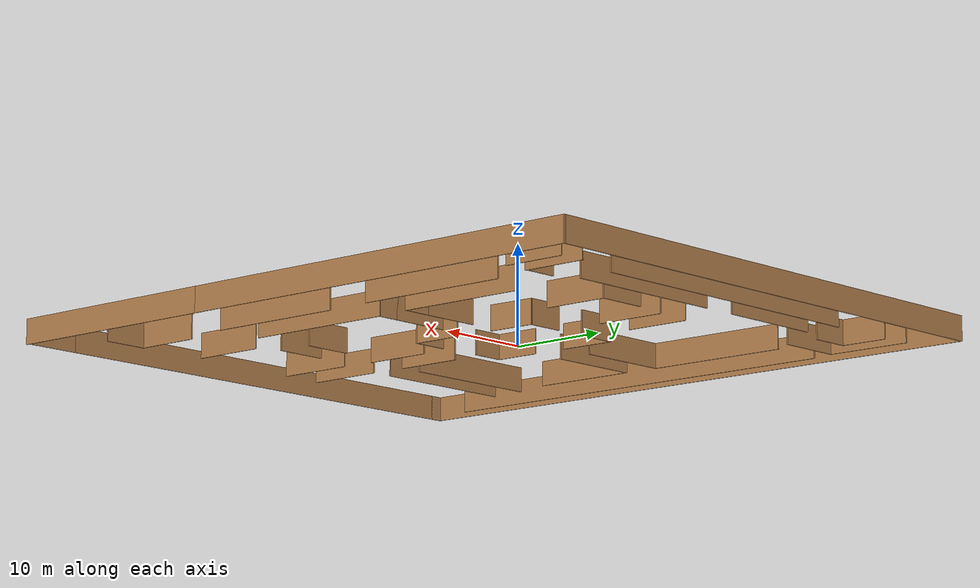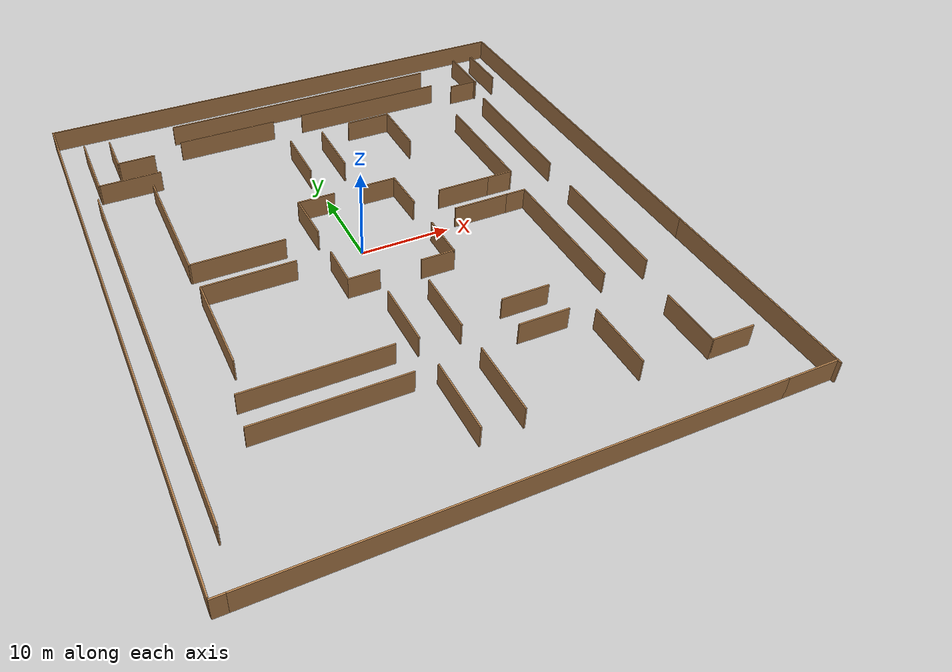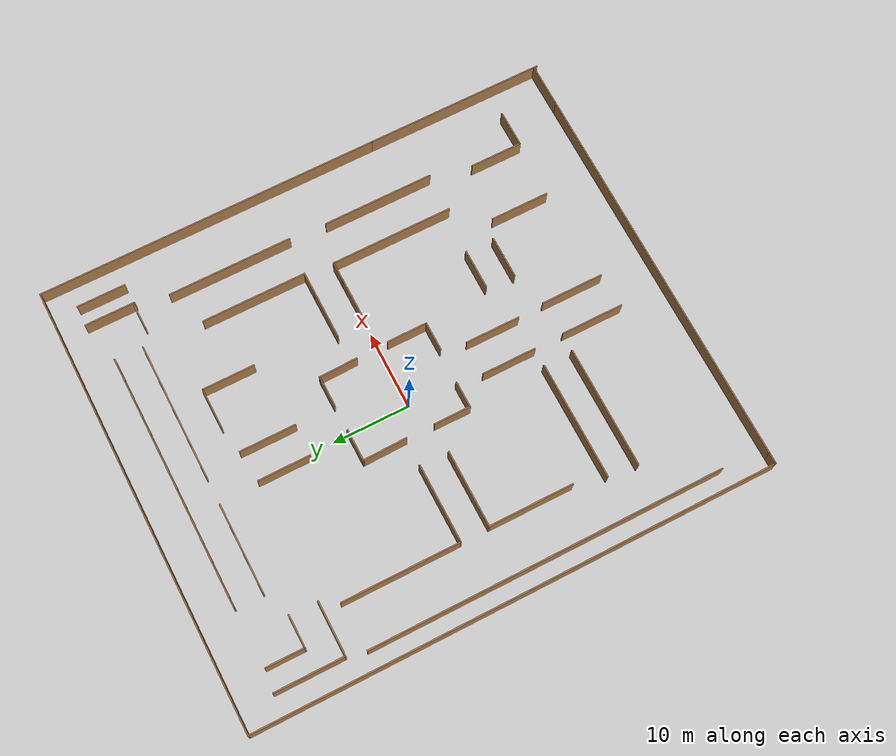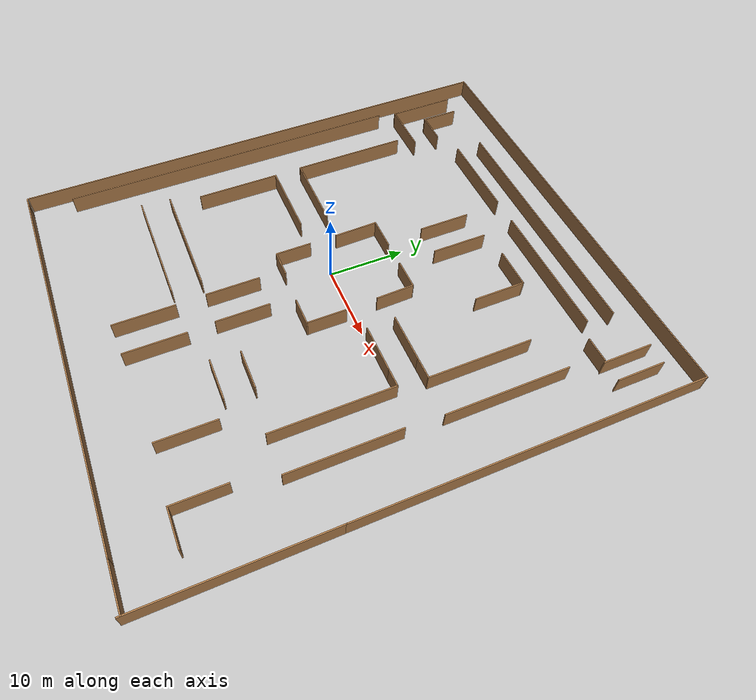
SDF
<?xml version='1.0'?>
<sdf version='1.7'>
  <model name='model6'>
    <pose>2.88212 -0.63871 0 0 -0 0</pose>
    <link name='Wall_10'>
      <collision name='Wall_10_Collision'>
        <geometry>
          <box>
            <size>51 0.15 2.5</size>
          </box>
        </geometry>
        <pose>0 0 1.25 0 -0 0</pose>
      </collision>
      <visual name='Wall_10_Visual'>
        <pose>0 0 1.25 0 -0 0</pose>
        <geometry>
          <box>
            <size>51 0.15 2.5</size>
          </box>
        </geometry>
        <material>
          <script>
            <uri>file://media/materials/scripts/gazebo.material</uri>
            <name>Gazebo/Wood</name>
          </script>
          <ambient>1 1 1 1</ambient>
        </material>
        <meta>
          <layer>0</layer>
        </meta>
      </visual>
      <pose>-2.12345 -33.3474 0 0 -0 0</pose>
    </link>
    <link name='Wall_101'>
      <collision name='Wall_101_Collision'>
        <geometry>
          <box>
            <size>4.25 0.15 2.5</size>
          </box>
        </geometry>
        <pose>0 0 1.25 0 -0 0</pose>
      </collision>
      <visual name='Wall_101_Visual'>
        <pose>0 0 1.25 0 -0 0</pose>
        <geometry>
          <box>
            <size>4.25 0.15 2.5</size>
          </box>
        </geometry>
        <material>
          <script>
            <uri>file://media/materials/scripts/gazebo.material</uri>
            <name>Gazebo/Wood</name>
          </script>
          <ambient>1 1 1 1</ambient>
        </material>
        <meta>
          <layer>0</layer>
        </meta>
      </visual>
      <pose>-21.1418 24.0684 0 0 -0 3.14159</pose>
    </link>
    <link name='Wall_102'>
      <collision name='Wall_102_Collision'>
        <geometry>
          <box>
            <size>5 0.15 2.5</size>
          </box>
        </geometry>
        <pose>0 0 1.25 0 -0 0</pose>
      </collision>
      <visual name='Wall_102_Visual'>
        <pose>0 0 1.25 0 -0 0</pose>
        <geometry>
          <box>
            <size>5 0.15 2.5</size>
          </box>
        </geometry>
        <material>
          <script>
            <uri>file://media/materials/scripts/gazebo.material</uri>
            <name>Gazebo/Wood</name>
          </script>
          <ambient>1 1 1 1</ambient>
        </material>
        <meta>
          <layer>0</layer>
        </meta>
      </visual>
      <pose>-23.1918 26.4934 0 0 -0 1.5708</pose>
    </link>
    <link name='Wall_104'>
      <collision name='Wall_104_Collision'>
        <geometry>
          <box>
            <size>6.5 0.15 2.5</size>
          </box>
        </geometry>
        <pose>0 0 1.25 0 -0 0</pose>
      </collision>
      <visual name='Wall_104_Visual'>
        <pose>0 0 1.25 0 -0 0</pose>
        <geometry>
          <box>
            <size>6.5 0.15 2.5</size>
          </box>
        </geometry>
        <material>
          <script>
            <uri>file://media/materials/scripts/gazebo.material</uri>
            <name>Gazebo/Wood</name>
          </script>
          <ambient>1 1 1 1</ambient>
        </material>
        <meta>
          <layer>0</layer>
        </meta>
      </visual>
      <pose>22.861 27.3286 0 0 -0 -1.5708</pose>
    </link>
    <link name='Wall_106'>
      <collision name='Wall_106_Collision'>
        <geometry>
          <box>
            <size>6.25 0.15 2.5</size>
          </box>
        </geometry>
        <pose>0 0 1.25 0 -0 0</pose>
      </collision>
      <visual name='Wall_106_Visual'>
        <pose>0 0 1.25 0 -0 0</pose>
        <geometry>
          <box>
            <size>6.25 0.15 2.5</size>
          </box>
        </geometry>
        <material>
          <script>
            <uri>file://media/materials/scripts/gazebo.material</uri>
            <name>Gazebo/Wood</name>
          </script>
          <ambient>1 1 1 1</ambient>
        </material>
        <meta>
          <layer>0</layer>
        </meta>
      </visual>
      <pose>25.4599 27.3298 0 0 -0 -1.5708</pose>
    </link>
    <link name='Wall_108'>
      <collision name='Wall_108_Collision'>
        <geometry>
          <box>
            <size>3.25 0.15 2.5</size>
          </box>
        </geometry>
        <pose>0 0 1.25 0 -0 0</pose>
      </collision>
      <visual name='Wall_108_Visual'>
        <pose>0 0 1.25 0 -0 0</pose>
        <geometry>
          <box>
            <size>3.25 0.15 2.5</size>
          </box>
        </geometry>
        <material>
          <script>
            <uri>file://media/materials/scripts/gazebo.material</uri>
            <name>Gazebo/Wood</name>
          </script>
          <ambient>1 1 1 1</ambient>
        </material>
        <meta>
          <layer>0</layer>
        </meta>
      </visual>
      <pose>21.0635 24.3159 0 0 -0 3.14159</pose>
    </link>
    <link name='Wall_110'>
      <collision name='Wall_110_Collision'>
        <geometry>
          <box>
            <size>5.5 0.15 2.5</size>
          </box>
        </geometry>
        <pose>0 0 1.25 0 -0 0</pose>
      </collision>
      <visual name='Wall_110_Visual'>
        <pose>0 0 1.25 0 -0 0</pose>
        <geometry>
          <box>
            <size>5.5 0.15 2.5</size>
          </box>
        </geometry>
        <material>
          <script>
            <uri>file://media/materials/scripts/gazebo.material</uri>
            <name>Gazebo/Wood</name>
          </script>
          <ambient>1 1 1 1</ambient>
        </material>
        <meta>
          <layer>0</layer>
        </meta>
      </visual>
      <pose>7.96288 -17.7607 0 0 -0 0</pose>
    </link>
    <link name='Wall_112'>
      <collision name='Wall_112_Collision'>
        <geometry>
          <box>
            <size>5.25 0.15 2.5</size>
          </box>
        </geometry>
        <pose>0 0 1.25 0 -0 0</pose>
      </collision>
      <visual name='Wall_112_Visual'>
        <pose>0 0 1.25 0 -0 0</pose>
        <geometry>
          <box>
            <size>5.25 0.15 2.5</size>
          </box>
        </geometry>
        <material>
          <script>
            <uri>file://media/materials/scripts/gazebo.material</uri>
            <name>Gazebo/Wood</name>
          </script>
          <ambient>1 1 1 1</ambient>
        </material>
        <meta>
          <layer>0</layer>
        </meta>
      </visual>
      <pose>8.08539 -14.048 0 0 -0 0</pose>
    </link>
    <link name='Wall_12'>
      <collision name='Wall_12_Collision'>
        <geometry>
          <box>
            <size>23.25 0.15 2.5</size>
          </box>
        </geometry>
        <pose>0 0 1.25 0 -0 0</pose>
      </collision>
      <visual name='Wall_12_Visual'>
        <pose>0 0 1.25 0 -0 0</pose>
        <geometry>
          <box>
            <size>23.25 0.15 2.5</size>
          </box>
        </geometry>
        <material>
          <script>
            <uri>file://media/materials/scripts/gazebo.material</uri>
            <name>Gazebo/Wood</name>
          </script>
          <ambient>1 1 1 1</ambient>
        </material>
        <meta>
          <layer>0</layer>
        </meta>
      </visual>
      <pose>28.925 -22.175 0 0 -0 1.5708</pose>
    </link>
    <link name='Wall_14'>
      <collision name='Wall_14_Collision'>
        <geometry>
          <box>
            <size>5.75 0.15 2.5</size>
          </box>
        </geometry>
        <pose>0 0 1.25 0 -0 0</pose>
      </collision>
      <visual name='Wall_14_Visual'>
        <pose>0 0 1.25 0 -0 0</pose>
        <geometry>
          <box>
            <size>5.75 0.15 2.5</size>
          </box>
        </geometry>
        <material>
          <script>
            <uri>file://media/materials/scripts/gazebo.material</uri>
            <name>Gazebo/Wood</name>
          </script>
          <ambient>1 1 1 1</ambient>
        </material>
        <meta>
          <layer>0</layer>
        </meta>
      </visual>
      <pose>26.1016 -33.3474 0 0 -0 0</pose>
    </link>
    <link name='Wall_16'>
      <collision name='Wall_16_Collision'>
        <geometry>
          <box>
            <size>44.5 0.15 2.5</size>
          </box>
        </geometry>
        <pose>0 0 1.25 0 -0 0</pose>
      </collision>
      <visual name='Wall_16_Visual'>
        <pose>0 0 1.25 0 -0 0</pose>
        <geometry>
          <box>
            <size>44.5 0.15 2.5</size>
          </box>
        </geometry>
        <material>
          <script>
            <uri>file://media/materials/scripts/gazebo.material</uri>
            <name>Gazebo/Wood</name>
          </script>
          <ambient>1 1 1 1</ambient>
        </material>
        <meta>
          <layer>0</layer>
        </meta>
      </visual>
      <pose>28.925 11.55 0 0 -0 1.5708</pose>
    </link>
    <link name='Wall_17'>
      <collision name='Wall_17_Collision'>
        <geometry>
          <box>
            <size>58 0.15 2.5</size>
          </box>
        </geometry>
        <pose>0 0 1.25 0 -0 0</pose>
      </collision>
      <visual name='Wall_17_Visual'>
        <pose>0 0 1.25 0 -0 0</pose>
        <geometry>
          <box>
            <size>58 0.15 2.5</size>
          </box>
        </geometry>
        <material>
          <script>
            <uri>file://media/materials/scripts/gazebo.material</uri>
            <name>Gazebo/Wood</name>
          </script>
          <ambient>1 1 1 1</ambient>
        </material>
        <meta>
          <layer>0</layer>
        </meta>
      </visual>
      <pose>0 33.725 0 0 -0 3.14159</pose>
    </link>
    <link name='Wall_18'>
      <collision name='Wall_18_Collision'>
        <geometry>
          <box>
            <size>67 0.15 2.5</size>
          </box>
        </geometry>
        <pose>0 0 1.25 0 -0 0</pose>
      </collision>
      <visual name='Wall_18_Visual'>
        <pose>0 0 1.25 0 -0 0</pose>
        <geometry>
          <box>
            <size>67 0.15 2.5</size>
          </box>
        </geometry>
        <material>
          <script>
            <uri>file://media/materials/scripts/gazebo.material</uri>
            <name>Gazebo/Wood</name>
          </script>
          <ambient>1 1 1 1</ambient>
        </material>
        <meta>
          <layer>0</layer>
        </meta>
      </visual>
      <pose>-28.925 0.299998 0 0 -0 -1.5708</pose>
    </link>
    <link name='Wall_20'>
      <collision name='Wall_20_Collision'>
        <geometry>
          <box>
            <size>1.5 0.15 2.5</size>
          </box>
        </geometry>
        <pose>0 0 1.25 0 -0 0</pose>
      </collision>
      <visual name='Wall_20_Visual'>
        <pose>0 0 1.25 0 -0 0</pose>
        <geometry>
          <box>
            <size>1.5 0.15 2.5</size>
          </box>
        </geometry>
        <material>
          <script>
            <uri>file://media/materials/scripts/gazebo.material</uri>
            <name>Gazebo/Wood</name>
          </script>
          <ambient>1 1 1 1</ambient>
        </material>
        <meta>
          <layer>0</layer>
        </meta>
      </visual>
      <pose>-28.2234 -33.3474 0 0 -0 3.14159</pose>
    </link>
    <link name='Wall_22'>
      <collision name='Wall_22_Collision'>
        <geometry>
          <box>
            <size>5.78125 0.15 2.5</size>
          </box>
        </geometry>
        <pose>0 0 1.25 0 -0 0</pose>
      </collision>
      <visual name='Wall_22_Visual'>
        <pose>0 0 1.25 0 -0 0</pose>
        <geometry>
          <box>
            <size>5.78125 0.15 2.5</size>
          </box>
        </geometry>
        <material>
          <script>
            <uri>file://media/materials/scripts/gazebo.material</uri>
            <name>Gazebo/Wood</name>
          </script>
          <ambient>1 1 1 1</ambient>
        </material>
        <meta>
          <layer>0</layer>
        </meta>
      </visual>
      <pose>-6.90194 5.84504 0 0 -0 1.59277</pose>
    </link>
    <link name='Wall_24'>
      <collision name='Wall_24_Collision'>
        <geometry>
          <box>
            <size>5.03146 0.15 2.5</size>
          </box>
        </geometry>
        <pose>0 0 1.25 0 -0 0</pose>
      </collision>
      <visual name='Wall_24_Visual'>
        <pose>0 0 1.25 0 -0 0</pose>
        <geometry>
          <box>
            <size>5.03146 0.15 2.5</size>
          </box>
        </geometry>
        <material>
          <script>
            <uri>file://media/materials/scripts/gazebo.material</uri>
            <name>Gazebo/Wood</name>
          </script>
          <ambient>1 1 1 1</ambient>
        </material>
        <meta>
          <layer>0</layer>
        </meta>
      </visual>
      <pose>4.44806 6.22004 0 0 -0 -1.54544</pose>
    </link>
    <link name='Wall_26'>
      <collision name='Wall_26_Collision'>
        <geometry>
          <box>
            <size>4.75 0.15 2.5</size>
          </box>
        </geometry>
        <pose>0 0 1.25 0 -0 0</pose>
      </collision>
      <visual name='Wall_26_Visual'>
        <pose>0 0 1.25 0 -0 0</pose>
        <geometry>
          <box>
            <size>4.75 0.15 2.5</size>
          </box>
        </geometry>
        <material>
          <script>
            <uri>file://media/materials/scripts/gazebo.material</uri>
            <name>Gazebo/Wood</name>
          </script>
          <ambient>1 1 1 1</ambient>
        </material>
        <meta>
          <layer>0</layer>
        </meta>
      </visual>
      <pose>-6.84006 -2.98254 0 0 -0 -1.5708</pose>
    </link>
    <link name='Wall_27'>
      <collision name='Wall_27_Collision'>
        <geometry>
          <box>
            <size>3.5 0.15 2.5</size>
          </box>
        </geometry>
        <pose>0 0 1.25 0 -0 0</pose>
      </collision>
      <visual name='Wall_27_Visual'>
        <pose>0 0 1.25 0 -0 0</pose>
        <geometry>
          <box>
            <size>3.5 0.15 2.5</size>
          </box>
        </geometry>
        <material>
          <script>
            <uri>file://media/materials/scripts/gazebo.material</uri>
            <name>Gazebo/Wood</name>
          </script>
          <ambient>1 1 1 1</ambient>
        </material>
        <meta>
          <layer>0</layer>
        </meta>
      </visual>
      <pose>-5.16506 -5.28254 0 0 -0 0</pose>
    </link>
    <link name='Wall_29'>
      <collision name='Wall_29_Collision'>
        <geometry>
          <box>
            <size>5.25 0.15 2.5</size>
          </box>
        </geometry>
        <pose>0 0 1.25 0 -0 0</pose>
      </collision>
      <visual name='Wall_29_Visual'>
        <pose>0 0 1.25 0 -0 0</pose>
        <geometry>
          <box>
            <size>5.25 0.15 2.5</size>
          </box>
        </geometry>
        <material>
          <script>
            <uri>file://media/materials/scripts/gazebo.material</uri>
            <name>Gazebo/Wood</name>
          </script>
          <ambient>1 1 1 1</ambient>
        </material>
        <meta>
          <layer>0</layer>
        </meta>
      </visual>
      <pose>4.66911 -2.98503 0 0 -0 -1.5708</pose>
    </link>
    <link name='Wall_30'>
      <collision name='Wall_30_Collision'>
        <geometry>
          <box>
            <size>3.75 0.15 2.5</size>
          </box>
        </geometry>
        <pose>0 0 1.25 0 -0 0</pose>
      </collision>
      <visual name='Wall_30_Visual'>
        <pose>0 0 1.25 0 -0 0</pose>
        <geometry>
          <box>
            <size>3.75 0.15 2.5</size>
          </box>
        </geometry>
        <material>
          <script>
            <uri>file://media/materials/scripts/gazebo.material</uri>
            <name>Gazebo/Wood</name>
          </script>
          <ambient>1 1 1 1</ambient>
        </material>
        <meta>
          <layer>0</layer>
        </meta>
      </visual>
      <pose>2.86911 -5.53503 0 0 -0 3.14159</pose>
    </link>
    <link name='Wall_32'>
      <collision name='Wall_32_Collision'>
        <geometry>
          <box>
            <size>4.25 0.15 2.5</size>
          </box>
        </geometry>
        <pose>0 0 1.25 0 -0 0</pose>
      </collision>
      <visual name='Wall_32_Visual'>
        <pose>0 0 1.25 0 -0 0</pose>
        <geometry>
          <box>
            <size>4.25 0.15 2.5</size>
          </box>
        </geometry>
        <material>
          <script>
            <uri>file://media/materials/scripts/gazebo.material</uri>
            <name>Gazebo/Wood</name>
          </script>
          <ambient>1 1 1 1</ambient>
        </material>
        <meta>
          <layer>0</layer>
        </meta>
      </visual>
      <pose>-4.91381 8.65999 0 0 -0 0</pose>
    </link>
    <link name='Wall_34'>
      <collision name='Wall_34_Collision'>
        <geometry>
          <box>
            <size>4 0.15 2.5</size>
          </box>
        </geometry>
        <pose>0 0 1.25 0 -0 0</pose>
      </collision>
      <visual name='Wall_34_Visual'>
        <pose>0 0 1.25 0 -0 0</pose>
        <geometry>
          <box>
            <size>4 0.15 2.5</size>
          </box>
        </geometry>
        <material>
          <script>
            <uri>file://media/materials/scripts/gazebo.material</uri>
            <name>Gazebo/Wood</name>
          </script>
          <ambient>1 1 1 1</ambient>
        </material>
        <meta>
          <layer>0</layer>
        </meta>
      </visual>
      <pose>2.46118 8.65999 0 0 -0 3.14159</pose>
    </link>
    <link name='Wall_36'>
      <collision name='Wall_36_Collision'>
        <geometry>
          <box>
            <size>10.25 0.15 2.5</size>
          </box>
        </geometry>
        <pose>0 0 1.25 0 -0 0</pose>
      </collision>
      <visual name='Wall_36_Visual'>
        <pose>0 0 1.25 0 -0 0</pose>
        <geometry>
          <box>
            <size>10.25 0.15 2.5</size>
          </box>
        </geometry>
        <material>
          <script>
            <uri>file://media/materials/scripts/gazebo.material</uri>
            <name>Gazebo/Wood</name>
          </script>
          <ambient>1 1 1 1</ambient>
        </material>
        <meta>
          <layer>0</layer>
        </meta>
      </visual>
      <pose>-15.4789 3.15385 0 0 -0 3.14159</pose>
    </link>
    <link name='Wall_37'>
      <collision name='Wall_37_Collision'>
        <geometry>
          <box>
            <size>15.25 0.15 2.5</size>
          </box>
        </geometry>
        <pose>0 0 1.25 0 -0 0</pose>
      </collision>
      <visual name='Wall_37_Visual'>
        <pose>0 0 1.25 0 -0 0</pose>
        <geometry>
          <box>
            <size>15.25 0.15 2.5</size>
          </box>
        </geometry>
        <material>
          <script>
            <uri>file://media/materials/scripts/gazebo.material</uri>
            <name>Gazebo/Wood</name>
          </script>
          <ambient>1 1 1 1</ambient>
        </material>
        <meta>
          <layer>0</layer>
        </meta>
      </visual>
      <pose>-20.5289 10.7038 0 0 -0 1.5708</pose>
    </link>
    <link name='Wall_42'>
      <collision name='Wall_42_Collision'>
        <geometry>
          <box>
            <size>33 0.15 2.5</size>
          </box>
        </geometry>
        <pose>0 0 1.25 0 -0 0</pose>
      </collision>
      <visual name='Wall_42_Visual'>
        <pose>0 0 1.25 0 -0 0</pose>
        <geometry>
          <box>
            <size>33 0.15 2.5</size>
          </box>
        </geometry>
        <material>
          <script>
            <uri>file://media/materials/scripts/gazebo.material</uri>
            <name>Gazebo/Wood</name>
          </script>
          <ambient>1 1 1 1</ambient>
        </material>
        <meta>
          <layer>0</layer>
        </meta>
      </visual>
      <pose>0.922122 29.1423 0 0 -0 0</pose>
    </link>
    <link name='Wall_48'>
      <collision name='Wall_48_Collision'>
        <geometry>
          <box>
            <size>16 0.15 2.5</size>
          </box>
        </geometry>
        <pose>0 0 1.25 0 -0 0</pose>
      </collision>
      <visual name='Wall_48_Visual'>
        <pose>0 0 1.25 0 -0 0</pose>
        <geometry>
          <box>
            <size>16 0.15 2.5</size>
          </box>
        </geometry>
        <material>
          <script>
            <uri>file://media/materials/scripts/gazebo.material</uri>
            <name>Gazebo/Wood</name>
          </script>
          <ambient>1 1 1 1</ambient>
        </material>
        <meta>
          <layer>0</layer>
        </meta>
      </visual>
      <pose>21.871 12.0595 0 0 -0 -1.5708</pose>
    </link>
    <link name='Wall_50'>
      <collision name='Wall_50_Collision'>
        <geometry>
          <box>
            <size>14.25 0.15 2.5</size>
          </box>
        </geometry>
        <pose>0 0 1.25 0 -0 0</pose>
      </collision>
      <visual name='Wall_50_Visual'>
        <pose>0 0 1.25 0 -0 0</pose>
        <geometry>
          <box>
            <size>14.25 0.15 2.5</size>
          </box>
        </geometry>
        <material>
          <script>
            <uri>file://media/materials/scripts/gazebo.material</uri>
            <name>Gazebo/Wood</name>
          </script>
          <ambient>1 1 1 1</ambient>
        </material>
        <meta>
          <layer>0</layer>
        </meta>
      </visual>
      <pose>21.6235 -7.73254 0 0 -0 -1.5708</pose>
    </link>
    <link name='Wall_52'>
      <collision name='Wall_52_Collision'>
        <geometry>
          <box>
            <size>6.25 0.15 2.5</size>
          </box>
        </geometry>
        <pose>0 0 1.25 0 -0 0</pose>
      </collision>
      <visual name='Wall_52_Visual'>
        <pose>0 0 1.25 0 -0 0</pose>
        <geometry>
          <box>
            <size>6.25 0.15 2.5</size>
          </box>
        </geometry>
        <material>
          <script>
            <uri>file://media/materials/scripts/gazebo.material</uri>
            <name>Gazebo/Wood</name>
          </script>
          <ambient>1 1 1 1</ambient>
        </material>
        <meta>
          <layer>0</layer>
        </meta>
      </visual>
      <pose>11.0605 4.51515 0 0 -0 0</pose>
    </link>
    <link name='Wall_54'>
      <collision name='Wall_54_Collision'>
        <geometry>
          <box>
            <size>6.25 0.15 2.5</size>
          </box>
        </geometry>
        <pose>0 0 1.25 0 -0 0</pose>
      </collision>
      <visual name='Wall_54_Visual'>
        <pose>0 0 1.25 0 -0 0</pose>
        <geometry>
          <box>
            <size>6.25 0.15 2.5</size>
          </box>
        </geometry>
        <material>
          <script>
            <uri>file://media/materials/scripts/gazebo.material</uri>
            <name>Gazebo/Wood</name>
          </script>
          <ambient>1 1 1 1</ambient>
        </material>
        <meta>
          <layer>0</layer>
        </meta>
      </visual>
      <pose>11.1842 0.802514 0 0 -0 0</pose>
    </link>
    <link name='Wall_56'>
      <collision name='Wall_56_Collision'>
        <geometry>
          <box>
            <size>7 0.15 2.5</size>
          </box>
        </geometry>
        <pose>0 0 1.25 0 -0 0</pose>
      </collision>
      <visual name='Wall_56_Visual'>
        <pose>0 0 1.25 0 -0 0</pose>
        <geometry>
          <box>
            <size>7 0.15 2.5</size>
          </box>
        </geometry>
        <material>
          <script>
            <uri>file://media/materials/scripts/gazebo.material</uri>
            <name>Gazebo/Wood</name>
          </script>
          <ambient>1 1 1 1</ambient>
        </material>
        <meta>
          <layer>0</layer>
        </meta>
      </visual>
      <pose>-3.99371 -12.0278 0 0 -0 -1.5708</pose>
    </link>
    <link name='Wall_58'>
      <collision name='Wall_58_Collision'>
        <geometry>
          <box>
            <size>8 0.15 2.5</size>
          </box>
        </geometry>
        <pose>0 0 1.25 0 -0 0</pose>
      </collision>
      <visual name='Wall_58_Visual'>
        <pose>0 0 1.25 0 -0 0</pose>
        <geometry>
          <box>
            <size>8 0.15 2.5</size>
          </box>
        </geometry>
        <material>
          <script>
            <uri>file://media/materials/scripts/gazebo.material</uri>
            <name>Gazebo/Wood</name>
          </script>
          <ambient>1 1 1 1</ambient>
        </material>
        <meta>
          <layer>0</layer>
        </meta>
      </visual>
      <pose>-3.86995 -23.2945 0 0 -0 -1.5708</pose>
    </link>
    <link name='Wall_60'>
      <collision name='Wall_60_Collision'>
        <geometry>
          <box>
            <size>15.25 0.15 2.5</size>
          </box>
        </geometry>
        <pose>0 0 1.25 0 -0 0</pose>
      </collision>
      <visual name='Wall_60_Visual'>
        <pose>0 0 1.25 0 -0 0</pose>
        <geometry>
          <box>
            <size>15.25 0.15 2.5</size>
          </box>
        </geometry>
        <material>
          <script>
            <uri>file://media/materials/scripts/gazebo.material</uri>
            <name>Gazebo/Wood</name>
          </script>
          <ambient>1 1 1 1</ambient>
        </material>
        <meta>
          <layer>0</layer>
        </meta>
      </visual>
      <pose>-13.895 -15.4093 0 0 -0 3.14159</pose>
    </link>
    <link name='Wall_62'>
      <collision name='Wall_62_Collision'>
        <geometry>
          <box>
            <size>15.75 0.15 2.5</size>
          </box>
        </geometry>
        <pose>0 0 1.25 0 -0 0</pose>
      </collision>
      <visual name='Wall_62_Visual'>
        <pose>0 0 1.25 0 -0 0</pose>
        <geometry>
          <box>
            <size>15.75 0.15 2.5</size>
          </box>
        </geometry>
        <material>
          <script>
            <uri>file://media/materials/scripts/gazebo.material</uri>
            <name>Gazebo/Wood</name>
          </script>
          <ambient>1 1 1 1</ambient>
        </material>
        <meta>
          <layer>0</layer>
        </meta>
      </visual>
      <pose>-14.0213 -19.2457 0 0 -0 3.14159</pose>
    </link>
    <link name='Wall_64'>
      <collision name='Wall_64_Collision'>
        <geometry>
          <box>
            <size>7.5 0.15 2.5</size>
          </box>
        </geometry>
        <pose>0 0 1.25 0 -0 0</pose>
      </collision>
      <visual name='Wall_64_Visual'>
        <pose>0 0 1.25 0 -0 0</pose>
        <geometry>
          <box>
            <size>7.5 0.15 2.5</size>
          </box>
        </geometry>
        <material>
          <script>
            <uri>file://media/materials/scripts/gazebo.material</uri>
            <name>Gazebo/Wood</name>
          </script>
          <ambient>1 1 1 1</ambient>
        </material>
        <meta>
          <layer>0</layer>
        </meta>
      </visual>
      <pose>12.9607 -22.6732 0 0 -0 -1.5708</pose>
    </link>
    <link name='Wall_66'>
      <collision name='Wall_66_Collision'>
        <geometry>
          <box>
            <size>6.75 0.15 2.5</size>
          </box>
        </geometry>
        <pose>0 0 1.25 0 -0 0</pose>
      </collision>
      <visual name='Wall_66_Visual'>
        <pose>0 0 1.25 0 -0 0</pose>
        <geometry>
          <box>
            <size>6.75 0.15 2.5</size>
          </box>
        </geometry>
        <material>
          <script>
            <uri>file://media/materials/scripts/gazebo.material</uri>
            <name>Gazebo/Wood</name>
          </script>
          <ambient>1 1 1 1</ambient>
        </material>
        <meta>
          <layer>0</layer>
        </meta>
      </visual>
      <pose>-3.62244 17.1795 0 0 -0 -1.5708</pose>
    </link>
    <link name='Wall_69'>
      <collision name='Wall_69_Collision'>
        <geometry>
          <box>
            <size>7.25 0.15 2.5</size>
          </box>
        </geometry>
        <pose>0 0 1.25 0 -0 0</pose>
      </collision>
      <visual name='Wall_69_Visual'>
        <pose>0 0 1.25 0 -0 0</pose>
        <geometry>
          <box>
            <size>7.25 0.15 2.5</size>
          </box>
        </geometry>
        <material>
          <script>
            <uri>file://media/materials/scripts/gazebo.material</uri>
            <name>Gazebo/Wood</name>
          </script>
          <ambient>1 1 1 1</ambient>
        </material>
        <meta>
          <layer>0</layer>
        </meta>
      </visual>
      <pose>0.461457 17.3007 0 0 -0 -1.5708</pose>
    </link>
    <link name='Wall_71'>
      <collision name='Wall_71_Collision'>
        <geometry>
          <box>
            <size>6.75 0.15 2.5</size>
          </box>
        </geometry>
        <pose>0 0 1.25 0 -0 0</pose>
      </collision>
      <visual name='Wall_71_Visual'>
        <pose>0 0 1.25 0 -0 0</pose>
        <geometry>
          <box>
            <size>6.75 0.15 2.5</size>
          </box>
        </geometry>
        <material>
          <script>
            <uri>file://media/materials/scripts/gazebo.material</uri>
            <name>Gazebo/Wood</name>
          </script>
          <ambient>1 1 1 1</ambient>
        </material>
        <meta>
          <layer>0</layer>
        </meta>
      </visual>
      <pose>9.24803 18.2105 0 0 -0 1.5708</pose>
    </link>
    <link name='Wall_72'>
      <collision name='Wall_72_Collision'>
        <geometry>
          <box>
            <size>5.25 0.15 2.5</size>
          </box>
        </geometry>
        <pose>0 0 1.25 0 -0 0</pose>
      </collision>
      <visual name='Wall_72_Visual'>
        <pose>0 0 1.25 0 -0 0</pose>
        <geometry>
          <box>
            <size>5.25 0.15 2.5</size>
          </box>
        </geometry>
        <material>
          <script>
            <uri>file://media/materials/scripts/gazebo.material</uri>
            <name>Gazebo/Wood</name>
          </script>
          <ambient>1 1 1 1</ambient>
        </material>
        <meta>
          <layer>0</layer>
        </meta>
      </visual>
      <pose>6.69803 21.5105 0 0 -0 3.14159</pose>
    </link>
    <link name='Wall_74'>
      <collision name='Wall_74_Collision'>
        <geometry>
          <box>
            <size>11.5 0.15 2.5</size>
          </box>
        </geometry>
        <pose>0 0 1.25 0 -0 0</pose>
      </collision>
      <visual name='Wall_74_Visual'>
        <pose>0 0 1.25 0 -0 0</pose>
        <geometry>
          <box>
            <size>11.5 0.15 2.5</size>
          </box>
        </geometry>
        <material>
          <script>
            <uri>file://media/materials/scripts/gazebo.material</uri>
            <name>Gazebo/Wood</name>
          </script>
          <ambient>1 1 1 1</ambient>
        </material>
        <meta>
          <layer>0</layer>
        </meta>
      </visual>
      <pose>-9.82788 25.5534 0 0 -0 0</pose>
    </link>
    <link name='Wall_76'>
      <collision name='Wall_76_Collision'>
        <geometry>
          <box>
            <size>17.75 0.15 2.5</size>
          </box>
        </geometry>
        <pose>0 0 1.25 0 -0 0</pose>
      </collision>
      <visual name='Wall_76_Visual'>
        <pose>0 0 1.25 0 -0 0</pose>
        <geometry>
          <box>
            <size>17.75 0.15 2.5</size>
          </box>
        </geometry>
        <material>
          <script>
            <uri>file://media/materials/scripts/gazebo.material</uri>
            <name>Gazebo/Wood</name>
          </script>
          <ambient>1 1 1 1</ambient>
        </material>
        <meta>
          <layer>0</layer>
        </meta>
      </visual>
      <pose>8.39518 25.5534 0 0 -0 0</pose>
    </link>
    <link name='Wall_80'>
      <collision name='Wall_80_Collision'>
        <geometry>
          <box>
            <size>8 0.15 2.5</size>
          </box>
        </geometry>
        <pose>0 0 1.25 0 -0 0</pose>
      </collision>
      <visual name='Wall_80_Visual'>
        <pose>0 0 1.25 0 -0 0</pose>
        <geometry>
          <box>
            <size>8 0.15 2.5</size>
          </box>
        </geometry>
        <material>
          <script>
            <uri>file://media/materials/scripts/gazebo.material</uri>
            <name>Gazebo/Wood</name>
          </script>
          <ambient>1 1 1 1</ambient>
        </material>
        <meta>
          <layer>0</layer>
        </meta>
      </visual>
      <pose>0.585212 -23.047 0 0 -0 -1.5708</pose>
    </link>
    <link name='Wall_82'>
      <collision name='Wall_82_Collision'>
        <geometry>
          <box>
            <size>7 0.15 2.5</size>
          </box>
        </geometry>
        <pose>0 0 1.25 0 -0 0</pose>
      </collision>
      <visual name='Wall_82_Visual'>
        <pose>0 0 1.25 0 -0 0</pose>
        <geometry>
          <box>
            <size>7 0.15 2.5</size>
          </box>
        </geometry>
        <material>
          <script>
            <uri>file://media/materials/scripts/gazebo.material</uri>
            <name>Gazebo/Wood</name>
          </script>
          <ambient>1 1 1 1</ambient>
        </material>
        <meta>
          <layer>0</layer>
        </meta>
      </visual>
      <pose>0.337703 -12.1516 0 0 -0 -1.5708</pose>
    </link>
    <link name='Wall_84'>
      <collision name='Wall_84_Collision'>
        <geometry>
          <box>
            <size>6.75 0.15 2.5</size>
          </box>
        </geometry>
        <pose>0 0 1.25 0 -0 0</pose>
      </collision>
      <visual name='Wall_84_Visual'>
        <pose>0 0 1.25 0 -0 0</pose>
        <geometry>
          <box>
            <size>6.75 0.15 2.5</size>
          </box>
        </geometry>
        <material>
          <script>
            <uri>file://media/materials/scripts/gazebo.material</uri>
            <name>Gazebo/Wood</name>
          </script>
          <ambient>1 1 1 1</ambient>
        </material>
        <meta>
          <layer>0</layer>
        </meta>
      </visual>
      <pose>20.3859 -23.412 0 0 -0 -1.5708</pose>
    </link>
    <link name='Wall_85'>
      <collision name='Wall_85_Collision'>
        <geometry>
          <box>
            <size>4.75 0.15 2.5</size>
          </box>
        </geometry>
        <pose>0 0 1.25 0 -0 0</pose>
      </collision>
      <visual name='Wall_85_Visual'>
        <pose>0 0 1.25 0 -0 0</pose>
        <geometry>
          <box>
            <size>4.75 0.15 2.5</size>
          </box>
        </geometry>
        <material>
          <script>
            <uri>file://media/materials/scripts/gazebo.material</uri>
            <name>Gazebo/Wood</name>
          </script>
          <ambient>1 1 1 1</ambient>
        </material>
        <meta>
          <layer>0</layer>
        </meta>
      </visual>
      <pose>22.6859 -26.712 0 0 -0 0</pose>
    </link>
    <link name='Wall_87'>
      <collision name='Wall_87_Collision'>
        <geometry>
          <box>
            <size>10 0.15 2.5</size>
          </box>
        </geometry>
        <pose>0 0 1.25 0 -0 0</pose>
      </collision>
      <visual name='Wall_87_Visual'>
        <pose>0 0 1.25 0 -0 0</pose>
        <geometry>
          <box>
            <size>10 0.15 2.5</size>
          </box>
        </geometry>
        <material>
          <script>
            <uri>file://media/materials/scripts/gazebo.material</uri>
            <name>Gazebo/Wood</name>
          </script>
          <ambient>1 1 1 1</ambient>
        </material>
        <meta>
          <layer>0</layer>
        </meta>
      </visual>
      <pose>-15.4777 -0.558786 0 0 -0 3.14159</pose>
    </link>
    <link name='Wall_88'>
      <collision name='Wall_88_Collision'>
        <geometry>
          <box>
            <size>11 0.15 2.5</size>
          </box>
        </geometry>
        <pose>0 0 1.25 0 -0 0</pose>
      </collision>
      <visual name='Wall_88_Visual'>
        <pose>0 0 1.25 0 -0 0</pose>
        <geometry>
          <box>
            <size>11 0.15 2.5</size>
          </box>
        </geometry>
        <material>
          <script>
            <uri>file://media/materials/scripts/gazebo.material</uri>
            <name>Gazebo/Wood</name>
          </script>
          <ambient>1 1 1 1</ambient>
        </material>
        <meta>
          <layer>0</layer>
        </meta>
      </visual>
      <pose>-20.4027 -5.98379 0 0 -0 -1.5708</pose>
    </link>
    <link name='Wall_90'>
      <collision name='Wall_90_Collision'>
        <geometry>
          <box>
            <size>45.75 0.15 2.5</size>
          </box>
        </geometry>
        <pose>0 0 1.25 0 -0 0</pose>
      </collision>
      <visual name='Wall_90_Visual'>
        <pose>0 0 1.25 0 -0 0</pose>
        <geometry>
          <box>
            <size>45.75 0.15 2.5</size>
          </box>
        </geometry>
        <material>
          <script>
            <uri>file://media/materials/scripts/gazebo.material</uri>
            <name>Gazebo/Wood</name>
          </script>
          <ambient>1 1 1 1</ambient>
        </material>
        <meta>
          <layer>0</layer>
        </meta>
      </visual>
      <pose>-26.6408 -4.79561 0 0 -0 -1.5708</pose>
    </link>
    <link name='Wall_92'>
      <collision name='Wall_92_Collision'>
        <geometry>
          <box>
            <size>3 0.15 2.5</size>
          </box>
        </geometry>
        <pose>0 0 1.25 0 -0 0</pose>
      </collision>
      <visual name='Wall_92_Visual'>
        <pose>0 0 1.25 0 -0 0</pose>
        <geometry>
          <box>
            <size>3 0.15 2.5</size>
          </box>
        </geometry>
        <material>
          <script>
            <uri>file://media/materials/scripts/gazebo.material</uri>
            <name>Gazebo/Wood</name>
          </script>
          <ambient>1 1 1 1</ambient>
        </material>
        <meta>
          <layer>0</layer>
        </meta>
      </visual>
      <pose>15.5355 4.51515 0 0 -0 0</pose>
    </link>
    <link name='Wall_93'>
      <collision name='Wall_93_Collision'>
        <geometry>
          <box>
            <size>13.5 0.15 2.5</size>
          </box>
        </geometry>
        <pose>0 0 1.25 0 -0 0</pose>
      </collision>
      <visual name='Wall_93_Visual'>
        <pose>0 0 1.25 0 -0 0</pose>
        <geometry>
          <box>
            <size>13.5 0.15 2.5</size>
          </box>
        </geometry>
        <material>
          <script>
            <uri>file://media/materials/scripts/gazebo.material</uri>
            <name>Gazebo/Wood</name>
          </script>
          <ambient>1 1 1 1</ambient>
        </material>
        <meta>
          <layer>0</layer>
        </meta>
      </visual>
      <pose>16.9605 11.1901 0 0 -0 1.5708</pose>
    </link>
    <link name='Wall_95'>
      <collision name='Wall_95_Collision'>
        <geometry>
          <box>
            <size>2.5 0.15 2.5</size>
          </box>
        </geometry>
        <pose>0 0 1.25 0 -0 0</pose>
      </collision>
      <visual name='Wall_95_Visual'>
        <pose>0 0 1.25 0 -0 0</pose>
        <geometry>
          <box>
            <size>2.5 0.15 2.5</size>
          </box>
        </geometry>
        <material>
          <script>
            <uri>file://media/materials/scripts/gazebo.material</uri>
            <name>Gazebo/Wood</name>
          </script>
          <ambient>1 1 1 1</ambient>
        </material>
        <meta>
          <layer>0</layer>
        </meta>
      </visual>
      <pose>15.4092 0.802514 0 0 -0 0</pose>
    </link>
    <link name='Wall_96'>
      <collision name='Wall_96_Collision'>
        <geometry>
          <box>
            <size>15.75 0.15 2.5</size>
          </box>
        </geometry>
        <pose>0 0 1.25 0 -0 0</pose>
      </collision>
      <visual name='Wall_96_Visual'>
        <pose>0 0 1.25 0 -0 0</pose>
        <geometry>
          <box>
            <size>15.75 0.15 2.5</size>
          </box>
        </geometry>
        <material>
          <script>
            <uri>file://media/materials/scripts/gazebo.material</uri>
            <name>Gazebo/Wood</name>
          </script>
          <ambient>1 1 1 1</ambient>
        </material>
        <meta>
          <layer>0</layer>
        </meta>
      </visual>
      <pose>16.5842 -6.99749 0 0 -0 -1.5708</pose>
    </link>
    <link name='Wall_98'>
      <collision name='Wall_98_Collision'>
        <geometry>
          <box>
            <size>7 0.15 2.5</size>
          </box>
        </geometry>
        <pose>0 0 1.25 0 -0 0</pose>
      </collision>
      <visual name='Wall_98_Visual'>
        <pose>0 0 1.25 0 -0 0</pose>
        <geometry>
          <box>
            <size>7 0.15 2.5</size>
          </box>
        </geometry>
        <material>
          <script>
            <uri>file://media/materials/scripts/gazebo.material</uri>
            <name>Gazebo/Wood</name>
          </script>
          <ambient>1 1 1 1</ambient>
        </material>
        <meta>
          <layer>0</layer>
        </meta>
      </visual>
      <pose>-22.6405 20.4795 0 0 -0 3.14159</pose>
    </link>
    <link name='Wall_99'>
      <collision name='Wall_99_Collision'>
        <geometry>
          <box>
            <size>9 0.15 2.5</size>
          </box>
        </geometry>
        <pose>0 0 1.25 0 -0 0</pose>
      </collision>
      <visual name='Wall_99_Visual'>
        <pose>0 0 1.25 0 -0 0</pose>
        <geometry>
          <box>
            <size>9 0.15 2.5</size>
          </box>
        </geometry>
        <material>
          <script>
            <uri>file://media/materials/scripts/gazebo.material</uri>
            <name>Gazebo/Wood</name>
          </script>
          <ambient>1 1 1 1</ambient>
        </material>
        <meta>
          <layer>0</layer>
        </meta>
      </visual>
      <pose>-26.0655 24.9045 0 0 -0 1.5708</pose>
    </link>
    <static>1</static>
  </model>
</sdf>
